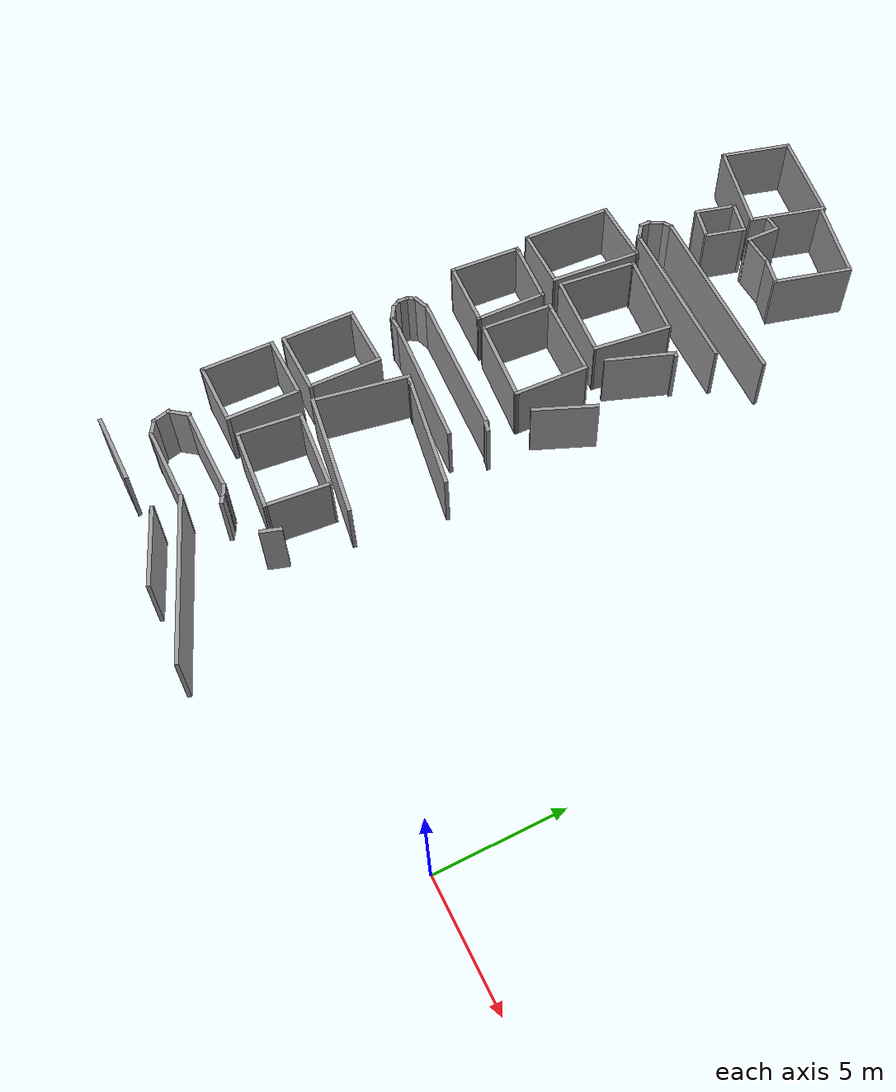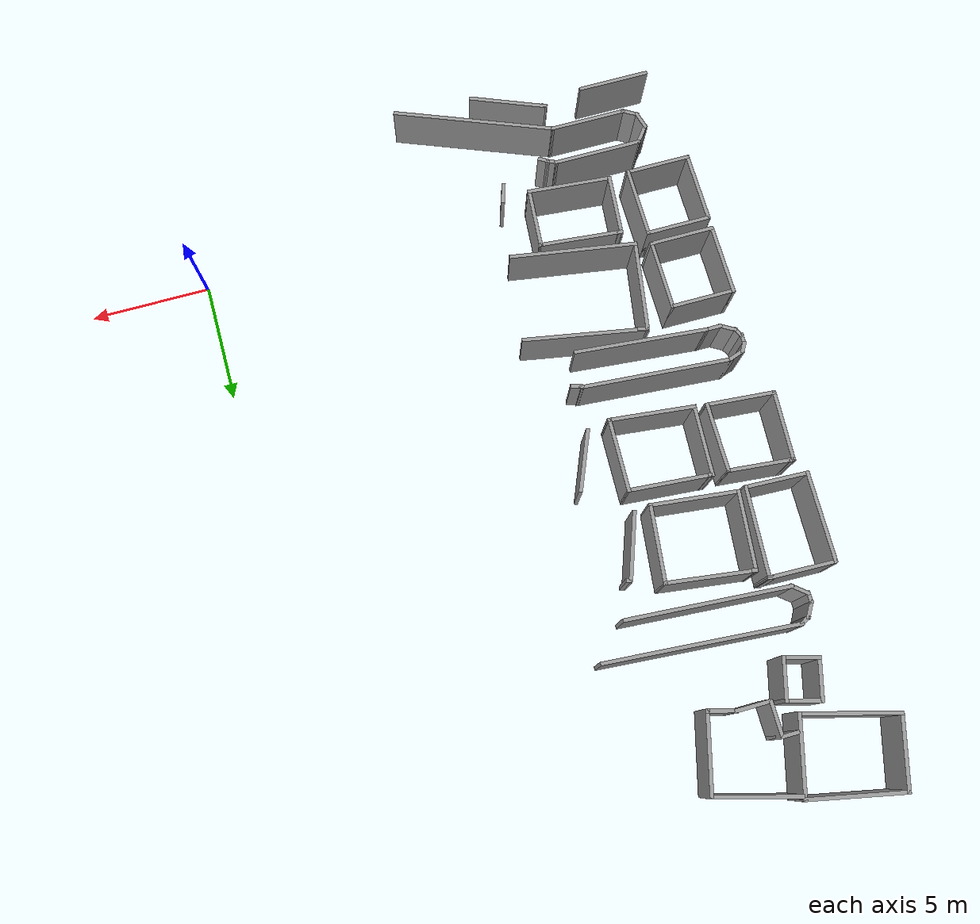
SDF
<sdf version="1.6">
 <model name="palazzo">
  <pose>-1.20783 -1.18535 0 0 -0 0</pose>
  <link name="Wall_1000">
   <collision name="Wall_1000_Collision">
    <geometry><box><size>5.30339 0.15 2.5</size></box></geometry>
    <pose>0 0 1.25 0 -0 0</pose>
   </collision>
   <visual name="Wall_1000_Visual">
    <pose>0 0 1.25 0 -0 0</pose>
    <geometry><box><size>5.30339 0.15 2.5</size></box></geometry>
    <material>
     <script><uri>file://media/materials/scripts/gazebo.material</uri><name>Gazebo/Grey</name></script>
     <ambient>1 1 1 1</ambient>
    </material>
    <meta><layer>0</layer></meta>
   </visual>
   <pose>-13.9241 4.48746 0 0 -0 2.98879</pose>
  </link>
  <link name="Wall_1002">
   <collision name="Wall_1002_Collision">
    <geometry><box><size>5.19311 0.15 2.5</size></box></geometry>
    <pose>0 0 1.25 0 -0 0</pose>
   </collision>
   <visual name="Wall_1002_Visual">
    <pose>0 0 1.25 0 -0 0</pose>
    <geometry><box><size>5.19311 0.15 2.5</size></box></geometry>
    <material>
     <script><uri>file://media/materials/scripts/gazebo.material</uri><name>Gazebo/Grey</name></script>
     <ambient>1 1 1 1</ambient>
    </material>
    <meta><layer>0</layer></meta>
   </visual>
   <pose>-13.3698 8.12706 0 0 -0 2.9686</pose>
  </link>
  <link name="Wall_1006">
   <collision name="Wall_1006_Collision">
    <geometry><box><size>0.25 0.15 2.5</size></box></geometry>
    <pose>0 0 1.25 0 -0 0</pose>
   </collision>
   <visual name="Wall_1006_Visual">
    <pose>0 0 1.25 0 -0 0</pose>
    <geometry><box><size>0.25 0.15 2.5</size></box></geometry>
    <material>
     <script><uri>file://media/materials/scripts/gazebo.material</uri><name>Gazebo/Grey</name></script>
     <ambient>1 1 1 1</ambient>
    </material>
    <meta><layer>0</layer></meta>
   </visual>
   <pose>-14.5991 -2.15833 0 0 -0 -0.523599</pose>
  </link>
  <link name="Wall_1008">
   <collision name="Wall_1008_Collision">
    <geometry><box><size>3.32198 0.15 2.5</size></box></geometry>
    <pose>0 0 1.25 0 -0 0</pose>
   </collision>
   <visual name="Wall_1008_Visual">
    <pose>0 0 1.25 0 -0 0</pose>
    <geometry><box><size>3.32198 0.15 2.5</size></box></geometry>
    <material>
     <script><uri>file://media/materials/scripts/gazebo.material</uri><name>Gazebo/Grey</name></script>
     <ambient>1 1 1 1</ambient>
    </material>
    <meta><layer>0</layer></meta>
   </visual>
   <pose>-13.1698 -2.72224 0 0 -0 2.76116</pose>
  </link>
  <link name="Wall_1034">
   <collision name="Wall_1034_Collision">
    <geometry><box><size>3 0.15 2.5</size></box></geometry>
    <pose>0 0 1.25 0 -0 0</pose>
   </collision>
   <visual name="Wall_1034_Visual">
    <pose>0 0 1.25 0 -0 0</pose>
    <geometry><box><size>3 0.15 2.5</size></box></geometry>
    <material>
     <script><uri>file://media/materials/scripts/gazebo.material</uri><name>Gazebo/Grey</name></script>
     <ambient>1 1 1 1</ambient>
    </material>
    <meta><layer>0</layer></meta>
   </visual>
   <pose>-17.7777 -2.51436 0 0 -0 0</pose>
  </link>
  <link name="Wall_259">
   <collision name="Wall_259_Collision">
    <geometry><box><size>0.5 0.15 2.5</size></box></geometry>
    <pose>0 0 1.25 0 -0 0</pose>
   </collision>
   <visual name="Wall_259_Visual">
    <pose>0 0 1.25 0 -0 0</pose>
    <geometry><box><size>0.5 0.15 2.5</size></box></geometry>
    <material>
     <script><uri>file://media/materials/scripts/gazebo.material</uri><name>Gazebo/Grey</name></script>
     <ambient>1 1 1 1</ambient>
    </material>
    <meta><layer>0</layer></meta>
   </visual>
   <pose>-13.8826 0.258272 0 0 -0 -0.523599</pose>
  </link>
  <link name="Wall_264">
   <collision name="Wall_264_Collision">
    <geometry><box><size>0.934212 0.15 2.5</size></box></geometry>
    <pose>0 0 1.25 0 -0 0</pose>
   </collision>
   <visual name="Wall_264_Visual">
    <pose>0 0 1.25 0 -0 0</pose>
    <geometry><box><size>0.934212 0.15 2.5</size></box></geometry>
    <material>
     <script><uri>file://media/materials/scripts/gazebo.material</uri><name>Gazebo/Grey</name></script>
     <ambient>1 1 1 1</ambient>
    </material>
    <meta><layer>0</layer></meta>
   </visual>
   <pose>-18.2057 0.190465 0 0 -0 -2.23075</pose>
  </link>
  <link name="Wall_265">
   <collision name="Wall_265_Collision">
    <geometry><box><size>0.808408 0.15 2.5</size></box></geometry>
    <pose>0 0 1.25 0 -0 0</pose>
   </collision>
   <visual name="Wall_265_Visual">
    <pose>0 0 1.25 0 -0 0</pose>
    <geometry><box><size>0.808408 0.15 2.5</size></box></geometry>
    <material>
     <script><uri>file://media/materials/scripts/gazebo.material</uri><name>Gazebo/Grey</name></script>
     <ambient>1 1 1 1</ambient>
    </material>
    <meta><layer>0</layer></meta>
   </visual>
   <pose>-18.3592 -0.427584 0 0 -0 -1.30367</pose>
  </link>
  <link name="Wall_266">
   <collision name="Wall_266_Collision">
    <geometry><box><size>0.75 0.15 2.5</size></box></geometry>
    <pose>0 0 1.25 0 -0 0</pose>
   </collision>
   <visual name="Wall_266_Visual">
    <pose>0 0 1.25 0 -0 0</pose>
    <geometry><box><size>0.75 0.15 2.5</size></box></geometry>
    <material>
     <script><uri>file://media/materials/scripts/gazebo.material</uri><name>Gazebo/Grey</name></script>
     <ambient>1 1 1 1</ambient>
    </material>
    <meta><layer>0</layer></meta>
   </visual>
   <pose>-18.0125 -0.895113 0 0 -0 -0.523599</pose>
  </link>
  <link name="Wall_267">
   <collision name="Wall_267_Collision">
    <geometry><box><size>3.25 0.15 2.5</size></box></geometry>
    <pose>0 0 1.25 0 -0 0</pose>
   </collision>
   <visual name="Wall_267_Visual">
    <pose>0 0 1.25 0 -0 0</pose>
    <geometry><box><size>3.25 0.15 2.5</size></box></geometry>
    <material>
     <script><uri>file://media/materials/scripts/gazebo.material</uri><name>Gazebo/Grey</name></script>
     <ambient>1 1 1 1</ambient>
    </material>
    <meta><layer>0</layer></meta>
   </visual>
   <pose>-16.2027 -1.04511 0 0 -0 0</pose>
  </link>
  <link name="Wall_271">
   <collision name="Wall_271_Collision">
    <geometry><box><size>6.85564 0.15 2.5</size></box></geometry>
    <pose>0 0 1.25 0 -0 0</pose>
   </collision>
   <visual name="Wall_271_Visual">
    <pose>0 0 1.25 0 -0 0</pose>
    <geometry><box><size>6.85564 0.15 2.5</size></box></geometry>
    <material>
     <script><uri>file://media/materials/scripts/gazebo.material</uri><name>Gazebo/Grey</name></script>
     <ambient>1 1 1 1</ambient>
    </material>
    <meta><layer>0</layer></meta>
   </visual>
   <pose>-11.5316 -2.26989 0 0 -0 -0.373952</pose>
  </link>
  <link name="Wall_45">
   <collision name="Wall_45_Collision">
    <geometry><box><size>3 0.15 2.5</size></box></geometry>
    <pose>0 0 1.25 0 -0 0</pose>
   </collision>
   <visual name="Wall_45_Visual">
    <pose>0 0 1.25 0 -0 0</pose>
    <geometry><box><size>3 0.15 2.5</size></box></geometry>
    <material>
     <script><uri>file://media/materials/scripts/gazebo.material</uri><name>Gazebo/Grey</name></script>
     <ambient>1 1 1 1</ambient>
    </material>
    <meta><layer>0</layer></meta>
   </visual>
   <pose>-20.1582 26.9712 0 0 -0 -1.8326</pose>
  </link>
  <link name="Wall_46">
   <collision name="Wall_46_Collision">
    <geometry><box><size>4 0.15 2.5</size></box></geometry>
    <pose>0 0 1.25 0 -0 0</pose>
   </collision>
   <visual name="Wall_46_Visual">
    <pose>0 0 1.25 0 -0 0</pose>
    <geometry><box><size>4 0.15 2.5</size></box></geometry>
    <material>
     <script><uri>file://media/materials/scripts/gazebo.material</uri><name>Gazebo/Grey</name></script>
     <ambient>1 1 1 1</ambient>
    </material>
    <meta><layer>0</layer></meta>
   </visual>
   <pose>-18.6676 25.0965 0 0 -0 -0.261799</pose>
  </link>
  <link name="Wall_47">
   <collision name="Wall_47_Collision">
    <geometry><box><size>3.25 0.15 2.5</size></box></geometry>
    <pose>0 0 1.25 0 -0 0</pose>
   </collision>
   <visual name="Wall_47_Visual">
    <pose>0 0 1.25 0 -0 0</pose>
    <geometry><box><size>3.25 0.15 2.5</size></box></geometry>
    <material>
     <script><uri>file://media/materials/scripts/gazebo.material</uri><name>Gazebo/Grey</name></script>
     <ambient>1 1 1 1</ambient>
    </material>
    <meta><layer>0</layer></meta>
   </visual>
   <pose>-16.407 26.0954 0 0 -0 1.309</pose>
  </link>
  <link name="Wall_48">
   <collision name="Wall_48_Collision">
    <geometry><box><size>4.00811 0.15 2.5</size></box></geometry>
    <pose>0 0 1.25 0 -0 0</pose>
   </collision>
   <visual name="Wall_48_Visual">
    <pose>0 0 1.25 0 -0 0</pose>
    <geometry><box><size>4.00811 0.15 2.5</size></box></geometry>
    <material>
     <script><uri>file://media/materials/scripts/gazebo.material</uri><name>Gazebo/Grey</name></script>
     <ambient>1 1 1 1</ambient>
    </material>
    <meta><layer>0</layer></meta>
   </visual>
   <pose>-17.8976 27.9701 0 0 -0 2.94464</pose>
  </link>
  <link name="Wall_50">
   <collision name="Wall_50_Collision">
    <geometry><box><size>0.75 0.15 2.5</size></box></geometry>
    <pose>0 0 1.25 0 -0 0</pose>
   </collision>
   <visual name="Wall_50_Visual">
    <pose>0 0 1.25 0 -0 0</pose>
    <geometry><box><size>0.75 0.15 2.5</size></box></geometry>
    <material>
     <script><uri>file://media/materials/scripts/gazebo.material</uri><name>Gazebo/Grey</name></script>
     <ambient>1 1 1 1</ambient>
    </material>
    <meta><layer>0</layer></meta>
   </visual>
   <pose>-16.2207 25.2315 0 0 -0 0</pose>
  </link>
  <link name="Wall_51">
   <collision name="Wall_51_Collision">
    <geometry><box><size>1.5 0.15 2.5</size></box></geometry>
    <pose>0 0 1.25 0 -0 0</pose>
   </collision>
   <visual name="Wall_51_Visual">
    <pose>0 0 1.25 0 -0 0</pose>
    <geometry><box><size>1.5 0.15 2.5</size></box></geometry>
    <material>
     <script><uri>file://media/materials/scripts/gazebo.material</uri><name>Gazebo/Grey</name></script>
     <ambient>1 1 1 1</ambient>
    </material>
    <meta><layer>0</layer></meta>
   </visual>
   <pose>-15.9207 24.5565 0 0 -0 -1.5708</pose>
  </link>
  <link name="Wall_52">
   <collision name="Wall_52_Collision">
    <geometry><box><size>1.5 0.15 2.5</size></box></geometry>
    <pose>0 0 1.25 0 -0 0</pose>
   </collision>
   <visual name="Wall_52_Visual">
    <pose>0 0 1.25 0 -0 0</pose>
    <geometry><box><size>1.5 0.15 2.5</size></box></geometry>
    <material>
     <script><uri>file://media/materials/scripts/gazebo.material</uri><name>Gazebo/Grey</name></script>
     <ambient>1 1 1 1</ambient>
    </material>
    <meta><layer>0</layer></meta>
   </visual>
   <pose>-15.2457 23.8815 0 0 -0 0</pose>
  </link>
  <link name="Wall_53">
   <collision name="Wall_53_Collision">
    <geometry><box><size>1.25 0.15 2.5</size></box></geometry>
    <pose>0 0 1.25 0 -0 0</pose>
   </collision>
   <visual name="Wall_53_Visual">
    <pose>0 0 1.25 0 -0 0</pose>
    <geometry><box><size>1.25 0.15 2.5</size></box></geometry>
    <material>
     <script><uri>file://media/materials/scripts/gazebo.material</uri><name>Gazebo/Grey</name></script>
     <ambient>1 1 1 1</ambient>
    </material>
    <meta><layer>0</layer></meta>
   </visual>
   <pose>-14.0395 23.7392 0 0 -0 -0.261799</pose>
  </link>
  <link name="Wall_54">
   <collision name="Wall_54_Collision">
    <geometry><box><size>3.25 0.15 2.5</size></box></geometry>
    <pose>0 0 1.25 0 -0 0</pose>
   </collision>
   <visual name="Wall_54_Visual">
    <pose>0 0 1.25 0 -0 0</pose>
    <geometry><box><size>3.25 0.15 2.5</size></box></geometry>
    <material>
     <script><uri>file://media/materials/scripts/gazebo.material</uri><name>Gazebo/Grey</name></script>
     <ambient>1 1 1 1</ambient>
    </material>
    <meta><layer>0</layer></meta>
   </visual>
   <pose>-13.107 25.094 0 0 -0 1.309</pose>
  </link>
  <link name="Wall_55">
   <collision name="Wall_55_Collision">
    <geometry><box><size>3.5 0.15 2.5</size></box></geometry>
    <pose>0 0 1.25 0 -0 0</pose>
   </collision>
   <visual name="Wall_55_Visual">
    <pose>0 0 1.25 0 -0 0</pose>
    <geometry><box><size>3.5 0.15 2.5</size></box></geometry>
    <material>
     <script><uri>file://media/materials/scripts/gazebo.material</uri><name>Gazebo/Grey</name></script>
     <ambient>1 1 1 1</ambient>
    </material>
    <meta><layer>0</layer></meta>
   </visual>
   <pose>-14.3238 27.0247 0 0 -0 2.87979</pose>
  </link>
  <link name="Wall_57">
   <collision name="Wall_57_Collision">
    <geometry><box><size>1.75 0.15 2.5</size></box></geometry>
    <pose>0 0 1.25 0 -0 0</pose>
   </collision>
   <visual name="Wall_57_Visual">
    <pose>0 0 1.25 0 -0 0</pose>
    <geometry><box><size>1.75 0.15 2.5</size></box></geometry>
    <material>
     <script><uri>file://media/materials/scripts/gazebo.material</uri><name>Gazebo/Grey</name></script>
     <ambient>1 1 1 1</ambient>
    </material>
    <meta><layer>0</layer></meta>
   </visual>
   <pose>-18.0045 23.6018 0 0 -0 -1.8326</pose>
  </link>
  <link name="Wall_58">
   <collision name="Wall_58_Collision">
    <geometry><box><size>1.5 0.15 2.5</size></box></geometry>
    <pose>0 0 1.25 0 -0 0</pose>
   </collision>
   <visual name="Wall_58_Visual">
    <pose>0 0 1.25 0 -0 0</pose>
    <geometry><box><size>1.5 0.15 2.5</size></box></geometry>
    <material>
     <script><uri>file://media/materials/scripts/gazebo.material</uri><name>Gazebo/Grey</name></script>
     <ambient>1 1 1 1</ambient>
    </material>
    <meta><layer>0</layer></meta>
   </visual>
   <pose>-17.5596 22.6544 0 0 -0 -0.261799</pose>
  </link>
  <link name="Wall_59">
   <collision name="Wall_59_Collision">
    <geometry><box><size>1.75 0.15 2.5</size></box></geometry>
    <pose>0 0 1.25 0 -0 0</pose>
   </collision>
   <visual name="Wall_59_Visual">
    <pose>0 0 1.25 0 -0 0</pose>
    <geometry><box><size>1.75 0.15 2.5</size></box></geometry>
    <material>
     <script><uri>file://media/materials/scripts/gazebo.material</uri><name>Gazebo/Grey</name></script>
     <ambient>1 1 1 1</ambient>
    </material>
    <meta><layer>0</layer></meta>
   </visual>
   <pose>-16.7005 23.2524 0 0 -0 1.309</pose>
  </link>
  <link name="Wall_60">
   <collision name="Wall_60_Collision">
    <geometry><box><size>1.5 0.15 2.5</size></box></geometry>
    <pose>0 0 1.25 0 -0 0</pose>
   </collision>
   <visual name="Wall_60_Visual">
    <pose>0 0 1.25 0 -0 0</pose>
    <geometry><box><size>1.5 0.15 2.5</size></box></geometry>
    <material>
     <script><uri>file://media/materials/scripts/gazebo.material</uri><name>Gazebo/Grey</name></script>
     <ambient>1 1 1 1</ambient>
    </material>
    <meta><layer>0</layer></meta>
   </visual>
   <pose>-17.1454 24.1999 0 0 -0 2.87979</pose>
  </link>
  <link name="Wall_678">
   <collision name="Wall_678_Collision">
    <geometry><box><size>6.73429 0.15 2.5</size></box></geometry>
    <pose>0 0 1.25 0 -0 0</pose>
   </collision>
   <visual name="Wall_678_Visual">
    <pose>0 0 1.25 0 -0 0</pose>
    <geometry><box><size>6.73429 0.15 2.5</size></box></geometry>
    <material>
     <script><uri>file://media/materials/scripts/gazebo.material</uri><name>Gazebo/Grey</name></script>
     <ambient>1 1 1 1</ambient>
    </material>
    <meta><layer>0</layer></meta>
   </visual>
   <pose>-14.805 19.7689 0 0 -0 -0.066766</pose>
  </link>
  <link name="Wall_684">
   <collision name="Wall_684_Collision">
    <geometry><box><size>7.95493 0.15 2.5</size></box></geometry>
    <pose>0 0 1.25 0 -0 0</pose>
   </collision>
   <visual name="Wall_684_Visual">
    <pose>0 0 1.25 0 -0 0</pose>
    <geometry><box><size>7.95493 0.15 2.5</size></box></geometry>
    <material>
     <script><uri>file://media/materials/scripts/gazebo.material</uri><name>Gazebo/Grey</name></script>
     <ambient>1 1 1 1</ambient>
    </material>
    <meta><layer>0</layer></meta>
   </visual>
   <pose>-14.1139 21.1706 0 0 -0 -0.073106</pose>
  </link>
  <link name="Wall_686">
   <collision name="Wall_686_Collision">
    <geometry><box><size>0.5 0.15 2.5</size></box></geometry>
    <pose>0 0 1.25 0 -0 0</pose>
   </collision>
   <visual name="Wall_686_Visual">
    <pose>0 0 1.25 0 -0 0</pose>
    <geometry><box><size>0.5 0.15 2.5</size></box></geometry>
    <material>
     <script><uri>file://media/materials/scripts/gazebo.material</uri><name>Gazebo/Grey</name></script>
     <ambient>1 1 1 1</ambient>
    </material>
    <meta><layer>0</layer></meta>
   </visual>
   <pose>-18.1575 21.3682 0 0 -0 -2.61799</pose>
  </link>
  <link name="Wall_687">
   <collision name="Wall_687_Collision">
    <geometry><box><size>0.75 0.15 2.5</size></box></geometry>
    <pose>0 0 1.25 0 -0 0</pose>
   </collision>
   <visual name="Wall_687_Visual">
    <pose>0 0 1.25 0 -0 0</pose>
    <geometry><box><size>0.75 0.15 2.5</size></box></geometry>
    <material>
     <script><uri>file://media/materials/scripts/gazebo.material</uri><name>Gazebo/Grey</name></script>
     <ambient>1 1 1 1</ambient>
    </material>
    <meta><layer>0</layer></meta>
   </visual>
   <pose>-18.459 21.0208 0 0 -0 -2.0944</pose>
  </link>
  <link name="Wall_688">
   <collision name="Wall_688_Collision">
    <geometry><box><size>0.5 0.15 2.5</size></box></geometry>
    <pose>0 0 1.25 0 -0 0</pose>
   </collision>
   <visual name="Wall_688_Visual">
    <pose>0 0 1.25 0 -0 0</pose>
    <geometry><box><size>0.5 0.15 2.5</size></box></geometry>
    <material>
     <script><uri>file://media/materials/scripts/gazebo.material</uri><name>Gazebo/Grey</name></script>
     <ambient>1 1 1 1</ambient>
    </material>
    <meta><layer>0</layer></meta>
   </visual>
   <pose>-18.609 20.586 0 0 -0 -1.5708</pose>
  </link>
  <link name="Wall_689">
   <collision name="Wall_689_Collision">
    <geometry><box><size>0.819395 0.15 2.5</size></box></geometry>
    <pose>0 0 1.25 0 -0 0</pose>
   </collision>
   <visual name="Wall_689_Visual">
    <pose>0 0 1.25 0 -0 0</pose>
    <geometry><box><size>0.819395 0.15 2.5</size></box></geometry>
    <material>
     <script><uri>file://media/materials/scripts/gazebo.material</uri><name>Gazebo/Grey</name></script>
     <ambient>1 1 1 1</ambient>
    </material>
    <meta><layer>0</layer></meta>
   </visual>
   <pose>-18.3494 20.1998 0 0 -0 -0.683078</pose>
  </link>
  <link name="Wall_704">
   <collision name="Wall_704_Collision">
    <geometry><box><size>3.75 0.15 2.5</size></box></geometry>
    <pose>0 0 1.25 0 -0 0</pose>
   </collision>
   <visual name="Wall_704_Visual">
    <pose>0 0 1.25 0 -0 0</pose>
    <geometry><box><size>3.75 0.15 2.5</size></box></geometry>
    <material>
     <script><uri>file://media/materials/scripts/gazebo.material</uri><name>Gazebo/Grey</name></script>
     <ambient>1 1 1 1</ambient>
    </material>
    <meta><layer>0</layer></meta>
   </visual>
   <pose>-16.1653 0.500236 0 0 -0 0</pose>
  </link>
  <link name="Wall_705">
   <collision name="Wall_705_Collision">
    <geometry><box><size>0.515386 0.15 2.5</size></box></geometry>
    <pose>0 0 1.25 0 -0 0</pose>
   </collision>
   <visual name="Wall_705_Visual">
    <pose>0 0 1.25 0 -0 0</pose>
    <geometry><box><size>0.515386 0.15 2.5</size></box></geometry>
    <material>
     <script><uri>file://media/materials/scripts/gazebo.material</uri><name>Gazebo/Grey</name></script>
     <ambient>1 1 1 1</ambient>
    </material>
    <meta><layer>0</layer></meta>
   </visual>
   <pose>-14.1998 0.423004 0 0 -0 -0.436469</pose>
  </link>
  <link name="Wall_734">
   <collision name="Wall_734_Collision">
    <geometry><box><size>0.5 0.15 2.5</size></box></geometry>
    <pose>0 0 1.25 0 -0 0</pose>
   </collision>
   <visual name="Wall_734_Visual">
    <pose>0 0 1.25 0 -0 0</pose>
    <geometry><box><size>0.5 0.15 2.5</size></box></geometry>
    <material>
     <script><uri>file://media/materials/scripts/gazebo.material</uri><name>Gazebo/Grey</name></script>
     <ambient>1 1 1 1</ambient>
    </material>
    <meta><layer>0</layer></meta>
   </visual>
   <pose>-12.3931 10.131 0 0 -0 2.87979</pose>
  </link>
  <link name="Wall_735">
   <collision name="Wall_735_Collision">
    <geometry><box><size>0.198305 0.15 2.5</size></box></geometry>
    <pose>0 0 1.25 0 -0 0</pose>
   </collision>
   <visual name="Wall_735_Visual">
    <pose>0 0 1.25 0 -0 0</pose>
    <geometry><box><size>0.198305 0.15 2.5</size></box></geometry>
    <material>
     <script><uri>file://media/materials/scripts/gazebo.material</uri><name>Gazebo/Grey</name></script>
     <ambient>1 1 1 1</ambient>
    </material>
    <meta><layer>0</layer></meta>
   </visual>
   <pose>-12.5822 10.1897 0 0 -0 2.55446</pose>
  </link>
  <link name="Wall_737">
   <collision name="Wall_737_Collision">
    <geometry><box><size>6.27736 0.15 2.5</size></box></geometry>
    <pose>0 0 1.25 0 -0 0</pose>
   </collision>
   <visual name="Wall_737_Visual">
    <pose>0 0 1.25 0 -0 0</pose>
    <geometry><box><size>6.27736 0.15 2.5</size></box></geometry>
    <material>
     <script><uri>file://media/materials/scripts/gazebo.material</uri><name>Gazebo/Grey</name></script>
     <ambient>1 1 1 1</ambient>
    </material>
    <meta><layer>0</layer></meta>
   </visual>
   <pose>-15.6575 10.4518 0 0 -0 -0.0743</pose>
  </link>
  <link name="Wall_739">
   <collision name="Wall_739_Collision">
    <geometry><box><size>0.725442 0.15 2.5</size></box></geometry>
    <pose>0 0 1.25 0 -0 0</pose>
   </collision>
   <visual name="Wall_739_Visual">
    <pose>0 0 1.25 0 -0 0</pose>
    <geometry><box><size>0.725442 0.15 2.5</size></box></geometry>
    <material>
     <script><uri>file://media/materials/scripts/gazebo.material</uri><name>Gazebo/Grey</name></script>
     <ambient>1 1 1 1</ambient>
    </material>
    <meta><layer>0</layer></meta>
   </visual>
   <pose>-18.9854 10.5661 0 0 -0 -2.81675</pose>
  </link>
  <link name="Wall_740">
   <collision name="Wall_740_Collision">
    <geometry><box><size>0.5 0.15 2.5</size></box></geometry>
    <pose>0 0 1.25 0 -0 0</pose>
   </collision>
   <visual name="Wall_740_Visual">
    <pose>0 0 1.25 0 -0 0</pose>
    <geometry><box><size>0.5 0.15 2.5</size></box></geometry>
    <material>
     <script><uri>file://media/materials/scripts/gazebo.material</uri><name>Gazebo/Grey</name></script>
     <ambient>1 1 1 1</ambient>
    </material>
    <meta><layer>0</layer></meta>
   </visual>
   <pose>-19.3456 10.3227 0 0 -0 -2.0944</pose>
  </link>
  <link name="Wall_741">
   <collision name="Wall_741_Collision">
    <geometry><box><size>0.5 0.15 2.5</size></box></geometry>
    <pose>0 0 1.25 0 -0 0</pose>
   </collision>
   <visual name="Wall_741_Visual">
    <pose>0 0 1.25 0 -0 0</pose>
    <geometry><box><size>0.5 0.15 2.5</size></box></geometry>
    <material>
     <script><uri>file://media/materials/scripts/gazebo.material</uri><name>Gazebo/Grey</name></script>
     <ambient>1 1 1 1</ambient>
    </material>
    <meta><layer>0</layer></meta>
   </visual>
   <pose>-19.4331 9.99617 0 0 -0 -1.5708</pose>
  </link>
  <link name="Wall_742">
   <collision name="Wall_742_Collision">
    <geometry><box><size>0.5 0.15 2.5</size></box></geometry>
    <pose>0 0 1.25 0 -0 0</pose>
   </collision>
   <visual name="Wall_742_Visual">
    <pose>0 0 1.25 0 -0 0</pose>
    <geometry><box><size>0.5 0.15 2.5</size></box></geometry>
    <material>
     <script><uri>file://media/materials/scripts/gazebo.material</uri><name>Gazebo/Grey</name></script>
     <ambient>1 1 1 1</ambient>
    </material>
    <meta><layer>0</layer></meta>
   </visual>
   <pose>-19.3456 9.66962 0 0 -0 -1.0472</pose>
  </link>
  <link name="Wall_743">
   <collision name="Wall_743_Collision">
    <geometry><box><size>0.75 0.15 2.5</size></box></geometry>
    <pose>0 0 1.25 0 -0 0</pose>
   </collision>
   <visual name="Wall_743_Visual">
    <pose>0 0 1.25 0 -0 0</pose>
    <geometry><box><size>0.75 0.15 2.5</size></box></geometry>
    <material>
     <script><uri>file://media/materials/scripts/gazebo.material</uri><name>Gazebo/Grey</name></script>
     <ambient>1 1 1 1</ambient>
    </material>
    <meta><layer>0</layer></meta>
   </visual>
   <pose>-18.9983 9.36806 0 0 -0 -0.523599</pose>
  </link>
  <link name="Wall_744">
   <collision name="Wall_744_Collision">
    <geometry><box><size>0.75 0.15 2.5</size></box></geometry>
    <pose>0 0 1.25 0 -0 0</pose>
   </collision>
   <visual name="Wall_744_Visual">
    <pose>0 0 1.25 0 -0 0</pose>
    <geometry><box><size>0.75 0.15 2.5</size></box></geometry>
    <material>
     <script><uri>file://media/materials/scripts/gazebo.material</uri><name>Gazebo/Grey</name></script>
     <ambient>1 1 1 1</ambient>
    </material>
    <meta><layer>0</layer></meta>
   </visual>
   <pose>-18.4385 9.21806 0 0 -0 0</pose>
  </link>
  <link name="Wall_746">
   <collision name="Wall_746_Collision">
    <geometry><box><size>5.53262 0.15 2.5</size></box></geometry>
    <pose>0 0 1.25 0 -0 0</pose>
   </collision>
   <visual name="Wall_746_Visual">
    <pose>0 0 1.25 0 -0 0</pose>
    <geometry><box><size>5.53262 0.15 2.5</size></box></geometry>
    <material>
     <script><uri>file://media/materials/scripts/gazebo.material</uri><name>Gazebo/Grey</name></script>
     <ambient>1 1 1 1</ambient>
    </material>
    <meta><layer>0</layer></meta>
   </visual>
   <pose>-15.4577 8.9806 0 0 -0 3.05324</pose>
  </link>
  <link name="Wall_804">
   <collision name="Wall_804_Collision">
    <geometry><box><size>2.59075 0.15 2.5</size></box></geometry>
    <pose>0 0 1.25 0 -0 0</pose>
   </collision>
   <visual name="Wall_804_Visual">
    <pose>0 0 1.25 0 -0 0</pose>
    <geometry><box><size>2.59075 0.15 2.5</size></box></geometry>
    <material>
     <script><uri>file://media/materials/scripts/gazebo.material</uri><name>Gazebo/Grey</name></script>
     <ambient>1 1 1 1</ambient>
    </material>
    <meta><layer>0</layer></meta>
   </visual>
   <pose>-11.8213 13.1198 0 0 -0 1.17021</pose>
  </link>
  <link name="Wall_821">
   <collision name="Wall_821_Collision">
    <geometry><box><size>0.25 0.15 2.5</size></box></geometry>
    <pose>0 0 1.25 0 -0 0</pose>
   </collision>
   <visual name="Wall_821_Visual">
    <pose>0 0 1.25 0 -0 0</pose>
    <geometry><box><size>0.25 0.15 2.5</size></box></geometry>
    <material>
     <script><uri>file://media/materials/scripts/gazebo.material</uri><name>Gazebo/Grey</name></script>
     <ambient>1 1 1 1</ambient>
    </material>
    <meta><layer>0</layer></meta>
   </visual>
   <pose>-12.1432 18.1263 0 0 -0 -0.261799</pose>
  </link>
  <link name="Wall_825">
   <collision name="Wall_825_Collision">
    <geometry><box><size>2.8246 0.15 2.5</size></box></geometry>
    <pose>0 0 1.25 0 -0 0</pose>
   </collision>
   <visual name="Wall_825_Visual">
    <pose>0 0 1.25 0 -0 0</pose>
    <geometry><box><size>2.8246 0.15 2.5</size></box></geometry>
    <material>
     <script><uri>file://media/materials/scripts/gazebo.material</uri><name>Gazebo/Grey</name></script>
     <ambient>1 1 1 1</ambient>
    </material>
    <meta><layer>0</layer></meta>
   </visual>
   <pose>-12.6514 16.8835 0 0 -0 1.21973</pose>
  </link>
  <link name="Wall_831">
   <collision name="Wall_831_Collision">
    <geometry><box><size>0.25 0.15 2.5</size></box></geometry>
    <pose>0 0 1.25 0 -0 0</pose>
   </collision>
   <visual name="Wall_831_Visual">
    <pose>0 0 1.25 0 -0 0</pose>
    <geometry><box><size>0.25 0.15 2.5</size></box></geometry>
    <material>
     <script><uri>file://media/materials/scripts/gazebo.material</uri><name>Gazebo/Grey</name></script>
     <ambient>1 1 1 1</ambient>
    </material>
    <meta><layer>0</layer></meta>
   </visual>
   <pose>-16.9127 19.0406 0 0 -0 -0.261799</pose>
  </link>
  <link name="Wall_833">
   <collision name="Wall_833_Collision">
    <geometry><box><size>3.70627 0.15 2.5</size></box></geometry>
    <pose>0 0 1.25 0 -0 0</pose>
   </collision>
   <visual name="Wall_833_Visual">
    <pose>0 0 1.25 0 -0 0</pose>
    <geometry><box><size>3.70627 0.15 2.5</size></box></geometry>
    <material>
     <script><uri>file://media/materials/scripts/gazebo.material</uri><name>Gazebo/Grey</name></script>
     <ambient>1 1 1 1</ambient>
    </material>
    <meta><layer>0</layer></meta>
   </visual>
   <pose>-15.1972 18.8285 0 0 -0 3.01469</pose>
  </link>
  <link name="Wall_835">
   <collision name="Wall_835_Collision">
    <geometry><box><size>3.30555 0.15 2.5</size></box></geometry>
    <pose>0 0 1.25 0 -0 0</pose>
   </collision>
   <visual name="Wall_835_Visual">
    <pose>0 0 1.25 0 -0 0</pose>
    <geometry><box><size>3.30555 0.15 2.5</size></box></geometry>
    <material>
     <script><uri>file://media/materials/scripts/gazebo.material</uri><name>Gazebo/Grey</name></script>
     <ambient>1 1 1 1</ambient>
    </material>
    <meta><layer>0</layer></meta>
   </visual>
   <pose>-17.1252 17.4843 0 0 -0 1.46653</pose>
  </link>
  <link name="Wall_837">
   <collision name="Wall_837_Collision">
    <geometry><box><size>3.23707 0.15 2.5</size></box></geometry>
    <pose>0 0 1.25 0 -0 0</pose>
   </collision>
   <visual name="Wall_837_Visual">
    <pose>0 0 1.25 0 -0 0</pose>
    <geometry><box><size>3.23707 0.15 2.5</size></box></geometry>
    <material>
     <script><uri>file://media/materials/scripts/gazebo.material</uri><name>Gazebo/Grey</name></script>
     <ambient>1 1 1 1</ambient>
    </material>
    <meta><layer>0</layer></meta>
   </visual>
   <pose>-13.6158 17.0707 0 0 -0 1.45231</pose>
  </link>
  <link name="Wall_839">
   <collision name="Wall_839_Collision">
    <geometry><box><size>3.66149 0.15 2.5</size></box></geometry>
    <pose>0 0 1.25 0 -0 0</pose>
   </collision>
   <visual name="Wall_839_Visual">
    <pose>0 0 1.25 0 -0 0</pose>
    <geometry><box><size>3.66149 0.15 2.5</size></box></geometry>
    <material>
     <script><uri>file://media/materials/scripts/gazebo.material</uri><name>Gazebo/Grey</name></script>
     <ambient>1 1 1 1</ambient>
    </material>
    <meta><layer>0</layer></meta>
   </visual>
   <pose>-15.5439 15.7265 0 0 -0 -0.107597</pose>
  </link>
  <link name="Wall_841">
   <collision name="Wall_841_Collision">
    <geometry><box><size>0.25 0.15 2.5</size></box></geometry>
    <pose>0 0 1.25 0 -0 0</pose>
   </collision>
   <visual name="Wall_841_Visual">
    <pose>0 0 1.25 0 -0 0</pose>
    <geometry><box><size>0.25 0.15 2.5</size></box></geometry>
    <material>
     <script><uri>file://media/materials/scripts/gazebo.material</uri><name>Gazebo/Grey</name></script>
     <ambient>1 1 1 1</ambient>
    </material>
    <meta><layer>0</layer></meta>
   </visual>
   <pose>-17.4108 19.4679 0 0 -0 2.87979</pose>
  </link>
  <link name="Wall_843">
   <collision name="Wall_843_Collision">
    <geometry><box><size>3.78398 0.15 2.5</size></box></geometry>
    <pose>0 0 1.25 0 -0 0</pose>
   </collision>
   <visual name="Wall_843_Visual">
    <pose>0 0 1.25 0 -0 0</pose>
    <geometry><box><size>3.78398 0.15 2.5</size></box></geometry>
    <material>
     <script><uri>file://media/materials/scripts/gazebo.material</uri><name>Gazebo/Grey</name></script>
     <ambient>1 1 1 1</ambient>
    </material>
    <meta><layer>0</layer></meta>
   </visual>
   <pose>-17.4902 17.6424 0 0 -0 1.50044</pose>
  </link>
  <link name="Wall_845">
   <collision name="Wall_845_Collision">
    <geometry><box><size>2.66991 0.15 2.5</size></box></geometry>
    <pose>0 0 1.25 0 -0 0</pose>
   </collision>
   <visual name="Wall_845_Visual">
    <pose>0 0 1.25 0 -0 0</pose>
    <geometry><box><size>2.66991 0.15 2.5</size></box></geometry>
    <material>
     <script><uri>file://media/materials/scripts/gazebo.material</uri><name>Gazebo/Grey</name></script>
     <ambient>1 1 1 1</ambient>
    </material>
    <meta><layer>0</layer></meta>
   </visual>
   <pose>-18.8769 15.8786 0 0 -0 -0.038628</pose>
  </link>
  <link name="Wall_847">
   <collision name="Wall_847_Collision">
    <geometry><box><size>2.82716 0.15 2.5</size></box></geometry>
    <pose>0 0 1.25 0 -0 0</pose>
   </collision>
   <visual name="Wall_847_Visual">
    <pose>0 0 1.25 0 -0 0</pose>
    <geometry><box><size>2.82716 0.15 2.5</size></box></geometry>
    <material>
     <script><uri>file://media/materials/scripts/gazebo.material</uri><name>Gazebo/Grey</name></script>
     <ambient>1 1 1 1</ambient>
    </material>
    <meta><layer>0</layer></meta>
   </visual>
   <pose>-18.7005 19.4914 0 0 -0 -0.027266</pose>
  </link>
  <link name="Wall_849">
   <collision name="Wall_849_Collision">
    <geometry><box><size>3.75198 0.15 2.5</size></box></geometry>
    <pose>0 0 1.25 0 -0 0</pose>
   </collision>
   <visual name="Wall_849_Visual">
    <pose>0 0 1.25 0 -0 0</pose>
    <geometry><box><size>3.75198 0.15 2.5</size></box></geometry>
    <material>
     <script><uri>file://media/materials/scripts/gazebo.material</uri><name>Gazebo/Grey</name></script>
     <ambient>1 1 1 1</ambient>
    </material>
    <meta><layer>0</layer></meta>
   </visual>
   <pose>-20.0873 17.7276 0 0 -0 1.54378</pose>
  </link>
  <link name="Wall_852">
   <collision name="Wall_852_Collision">
    <geometry><box><size>0.25 0.15 2.5</size></box></geometry>
    <pose>0 0 1.25 0 -0 0</pose>
   </collision>
   <visual name="Wall_852_Visual">
    <pose>0 0 1.25 0 -0 0</pose>
    <geometry><box><size>0.25 0.15 2.5</size></box></geometry>
    <material>
     <script><uri>file://media/materials/scripts/gazebo.material</uri><name>Gazebo/Grey</name></script>
     <ambient>1 1 1 1</ambient>
    </material>
    <meta><layer>0</layer></meta>
   </visual>
   <pose>-19.7315 15.2661 0 0 -0 0</pose>
  </link>
  <link name="Wall_854">
   <collision name="Wall_854_Collision">
    <geometry><box><size>2.77664 0.15 2.5</size></box></geometry>
    <pose>0 0 1.25 0 -0 0</pose>
   </collision>
   <visual name="Wall_854_Visual">
    <pose>0 0 1.25 0 -0 0</pose>
    <geometry><box><size>2.77664 0.15 2.5</size></box></geometry>
    <material>
     <script><uri>file://media/materials/scripts/gazebo.material</uri><name>Gazebo/Grey</name></script>
     <ambient>1 1 1 1</ambient>
    </material>
    <meta><layer>0</layer></meta>
   </visual>
   <pose>-18.4738 15.1444 0 0 -0 3.04884</pose>
  </link>
  <link name="Wall_856">
   <collision name="Wall_856_Collision">
    <geometry><box><size>2.96376 0.15 2.5</size></box></geometry>
    <pose>0 0 1.25 0 -0 0</pose>
   </collision>
   <visual name="Wall_856_Visual">
    <pose>0 0 1.25 0 -0 0</pose>
    <geometry><box><size>2.96376 0.15 2.5</size></box></geometry>
    <material>
     <script><uri>file://media/materials/scripts/gazebo.material</uri><name>Gazebo/Grey</name></script>
     <ambient>1 1 1 1</ambient>
    </material>
    <meta><layer>0</layer></meta>
   </visual>
   <pose>-19.8545 13.8611 0 0 -0 1.5189</pose>
  </link>
  <link name="Wall_858">
   <collision name="Wall_858_Collision">
    <geometry><box><size>2.93575 0.15 2.5</size></box></geometry>
    <pose>0 0 1.25 0 -0 0</pose>
   </collision>
   <visual name="Wall_858_Visual">
    <pose>0 0 1.25 0 -0 0</pose>
    <geometry><box><size>2.93575 0.15 2.5</size></box></geometry>
    <material>
     <script><uri>file://media/materials/scripts/gazebo.material</uri><name>Gazebo/Grey</name></script>
     <ambient>1 1 1 1</ambient>
    </material>
    <meta><layer>0</layer></meta>
   </visual>
   <pose>-17.1783 13.63 0 0 -0 1.56206</pose>
  </link>
  <link name="Wall_860">
   <collision name="Wall_860_Collision">
    <geometry><box><size>2.89573 0.15 2.5</size></box></geometry>
    <pose>0 0 1.25 0 -0 0</pose>
   </collision>
   <visual name="Wall_860_Visual">
    <pose>0 0 1.25 0 -0 0</pose>
    <geometry><box><size>2.89573 0.15 2.5</size></box></geometry>
    <material>
     <script><uri>file://media/materials/scripts/gazebo.material</uri><name>Gazebo/Grey</name></script>
     <ambient>1 1 1 1</ambient>
    </material>
    <meta><layer>0</layer></meta>
   </visual>
   <pose>-18.559 12.3466 0 0 -0 -0.07983</pose>
  </link>
  <link name="Wall_862">
   <collision name="Wall_862_Collision">
    <geometry><box><size>0.25 0.15 2.5</size></box></geometry>
    <pose>0 0 1.25 0 -0 0</pose>
   </collision>
   <visual name="Wall_862_Visual">
    <pose>0 0 1.25 0 -0 0</pose>
    <geometry><box><size>0.25 0.15 2.5</size></box></geometry>
    <material>
     <script><uri>file://media/materials/scripts/gazebo.material</uri><name>Gazebo/Grey</name></script>
     <ambient>1 1 1 1</ambient>
    </material>
    <meta><layer>0</layer></meta>
   </visual>
   <pose>-16.4683 15.0057 0 0 -0 0</pose>
  </link>
  <link name="Wall_864">
   <collision name="Wall_864_Collision">
    <geometry><box><size>3.52632 0.15 2.5</size></box></geometry>
    <pose>0 0 1.25 0 -0 0</pose>
   </collision>
   <visual name="Wall_864_Visual">
    <pose>0 0 1.25 0 -0 0</pose>
    <geometry><box><size>3.52632 0.15 2.5</size></box></geometry>
    <material>
     <script><uri>file://media/materials/scripts/gazebo.material</uri><name>Gazebo/Grey</name></script>
     <ambient>1 1 1 1</ambient>
    </material>
    <meta><layer>0</layer></meta>
   </visual>
   <pose>-14.8351 14.8769 0 0 -0 3.06524</pose>
  </link>
  <link name="Wall_866">
   <collision name="Wall_866_Collision">
    <geometry><box><size>2.98731 0.15 2.5</size></box></geometry>
    <pose>0 0 1.25 0 -0 0</pose>
   </collision>
   <visual name="Wall_866_Visual">
    <pose>0 0 1.25 0 -0 0</pose>
    <geometry><box><size>2.98731 0.15 2.5</size></box></geometry>
    <material>
     <script><uri>file://media/materials/scripts/gazebo.material</uri><name>Gazebo/Grey</name></script>
     <ambient>1 1 1 1</ambient>
    </material>
    <meta><layer>0</layer></meta>
   </visual>
   <pose>-16.5965 13.5892 0 0 -0 1.51566</pose>
  </link>
  <link name="Wall_868">
   <collision name="Wall_868_Collision">
    <geometry><box><size>3.59042 0.15 2.5</size></box></geometry>
    <pose>0 0 1.25 0 -0 0</pose>
   </collision>
   <visual name="Wall_868_Visual">
    <pose>0 0 1.25 0 -0 0</pose>
    <geometry><box><size>3.59042 0.15 2.5</size></box></geometry>
    <material>
     <script><uri>file://media/materials/scripts/gazebo.material</uri><name>Gazebo/Grey</name></script>
     <ambient>1 1 1 1</ambient>
    </material>
    <meta><layer>0</layer></meta>
   </visual>
   <pose>-14.9638 11.9933 0 0 -0 3.03714</pose>
  </link>
  <link name="Wall_870">
   <collision name="Wall_870_Collision">
    <geometry><box><size>3.08592 0.15 2.5</size></box></geometry>
    <pose>0 0 1.25 0 -0 0</pose>
   </collision>
   <visual name="Wall_870_Visual">
    <pose>0 0 1.25 0 -0 0</pose>
    <geometry><box><size>3.08592 0.15 2.5</size></box></geometry>
    <material>
     <script><uri>file://media/materials/scripts/gazebo.material</uri><name>Gazebo/Grey</name></script>
     <ambient>1 1 1 1</ambient>
    </material>
    <meta><layer>0</layer></meta>
   </visual>
   <pose>-13.2024 13.2811 0 0 -0 -1.60526</pose>
  </link>
  <link name="Wall_972">
   <collision name="Wall_972_Collision">
    <geometry><box><size>0.841298 0.15 2.5</size></box></geometry>
    <pose>0 0 1.25 0 -0 0</pose>
   </collision>
   <visual name="Wall_972_Visual">
    <pose>0 0 1.25 0 -0 0</pose>
    <geometry><box><size>0.841298 0.15 2.5</size></box></geometry>
    <material>
     <script><uri>file://media/materials/scripts/gazebo.material</uri><name>Gazebo/Grey</name></script>
     <ambient>1 1 1 1</ambient>
    </material>
    <meta><layer>0</layer></meta>
   </visual>
   <pose>-11.8271 1.26621 0 0 -0 1.2634</pose>
  </link>
  <link name="Wall_976">
   <collision name="Wall_976_Collision">
    <geometry><box><size>0.25 0.15 2.5</size></box></geometry>
    <pose>0 0 1.25 0 -0 0</pose>
   </collision>
   <visual name="Wall_976_Visual">
    <pose>0 0 1.25 0 -0 0</pose>
    <geometry><box><size>0.25 0.15 2.5</size></box></geometry>
    <material>
     <script><uri>file://media/materials/scripts/gazebo.material</uri><name>Gazebo/Grey</name></script>
     <ambient>1 1 1 1</ambient>
    </material>
    <meta><layer>0</layer></meta>
   </visual>
   <pose>-16.0129 4.22077 0 0 -0 0</pose>
  </link>
  <link name="Wall_978">
   <collision name="Wall_978_Collision">
    <geometry><box><size>2.60811 0.15 2.5</size></box></geometry>
    <pose>0 0 1.25 0 -0 0</pose>
   </collision>
   <visual name="Wall_978_Visual">
    <pose>0 0 1.25 0 -0 0</pose>
    <geometry><box><size>2.60811 0.15 2.5</size></box></geometry>
    <material>
     <script><uri>file://media/materials/scripts/gazebo.material</uri><name>Gazebo/Grey</name></script>
     <ambient>1 1 1 1</ambient>
    </material>
    <meta><layer>0</layer></meta>
   </visual>
   <pose>-16.1779 2.99711 0 0 -0 1.47706</pose>
  </link>
  <link name="Wall_980">
   <collision name="Wall_980_Collision">
    <geometry><box><size>3.53226 0.15 2.5</size></box></geometry>
    <pose>0 0 1.25 0 -0 0</pose>
   </collision>
   <visual name="Wall_980_Visual">
    <pose>0 0 1.25 0 -0 0</pose>
    <geometry><box><size>3.53226 0.15 2.5</size></box></geometry>
    <material>
     <script><uri>file://media/materials/scripts/gazebo.material</uri><name>Gazebo/Grey</name></script>
     <ambient>1 1 1 1</ambient>
    </material>
    <meta><layer>0</layer></meta>
   </visual>
   <pose>-14.379 4.06389 0 0 -0 3.04869</pose>
  </link>
  <link name="Wall_982">
   <collision name="Wall_982_Collision">
    <geometry><box><size>2.58452 0.15 2.5</size></box></geometry>
    <pose>0 0 1.25 0 -0 0</pose>
   </collision>
   <visual name="Wall_982_Visual">
    <pose>0 0 1.25 0 -0 0</pose>
    <geometry><box><size>2.58452 0.15 2.5</size></box></geometry>
    <material>
     <script><uri>file://media/materials/scripts/gazebo.material</uri><name>Gazebo/Grey</name></script>
     <ambient>1 1 1 1</ambient>
    </material>
    <meta><layer>0</layer></meta>
   </visual>
   <pose>-12.7946 2.69381 0 0 -0 1.48908</pose>
  </link>
  <link name="Wall_984">
   <collision name="Wall_984_Collision">
    <geometry><box><size>3.56164 0.15 2.5</size></box></geometry>
    <pose>0 0 1.25 0 -0 0</pose>
   </collision>
   <visual name="Wall_984_Visual">
    <pose>0 0 1.25 0 -0 0</pose>
    <geometry><box><size>3.56164 0.15 2.5</size></box></geometry>
    <material>
     <script><uri>file://media/materials/scripts/gazebo.material</uri><name>Gazebo/Grey</name></script>
     <ambient>1 1 1 1</ambient>
    </material>
    <meta><layer>0</layer></meta>
   </visual>
   <pose>-14.5935 1.62703 0 0 -0 -0.085942</pose>
  </link>
  <link name="Wall_986">
   <collision name="Wall_986_Collision">
    <geometry><box><size>2.75 0.15 2.5</size></box></geometry>
    <pose>0 0 1.25 0 -0 0</pose>
   </collision>
   <visual name="Wall_986_Visual">
    <pose>0 0 1.25 0 -0 0</pose>
    <geometry><box><size>2.75 0.15 2.5</size></box></geometry>
    <material>
     <script><uri>file://media/materials/scripts/gazebo.material</uri><name>Gazebo/Grey</name></script>
     <ambient>1 1 1 1</ambient>
    </material>
    <meta><layer>0</layer></meta>
   </visual>
   <pose>-18.4339 4.5659 0 0 -0 0</pose>
  </link>
  <link name="Wall_987">
   <collision name="Wall_987_Collision">
    <geometry><box><size>3 0.15 2.5</size></box></geometry>
    <pose>0 0 1.25 0 -0 0</pose>
   </collision>
   <visual name="Wall_987_Visual">
    <pose>0 0 1.25 0 -0 0</pose>
    <geometry><box><size>3 0.15 2.5</size></box></geometry>
    <material>
     <script><uri>file://media/materials/scripts/gazebo.material</uri><name>Gazebo/Grey</name></script>
     <ambient>1 1 1 1</ambient>
    </material>
    <meta><layer>0</layer></meta>
   </visual>
   <pose>-17.1339 3.1409 0 0 -0 -1.5708</pose>
  </link>
  <link name="Wall_988">
   <collision name="Wall_988_Collision">
    <geometry><box><size>2.75 0.15 2.5</size></box></geometry>
    <pose>0 0 1.25 0 -0 0</pose>
   </collision>
   <visual name="Wall_988_Visual">
    <pose>0 0 1.25 0 -0 0</pose>
    <geometry><box><size>2.75 0.15 2.5</size></box></geometry>
    <material>
     <script><uri>file://media/materials/scripts/gazebo.material</uri><name>Gazebo/Grey</name></script>
     <ambient>1 1 1 1</ambient>
    </material>
    <meta><layer>0</layer></meta>
   </visual>
   <pose>-18.4339 1.7159 0 0 -0 3.14159</pose>
  </link>
  <link name="Wall_989">
   <collision name="Wall_989_Collision">
    <geometry><box><size>3 0.15 2.5</size></box></geometry>
    <pose>0 0 1.25 0 -0 0</pose>
   </collision>
   <visual name="Wall_989_Visual">
    <pose>0 0 1.25 0 -0 0</pose>
    <geometry><box><size>3 0.15 2.5</size></box></geometry>
    <material>
     <script><uri>file://media/materials/scripts/gazebo.material</uri><name>Gazebo/Grey</name></script>
     <ambient>1 1 1 1</ambient>
    </material>
    <meta><layer>0</layer></meta>
   </visual>
   <pose>-19.7339 3.1409 0 0 -0 1.5708</pose>
  </link>
  <link name="Wall_991">
   <collision name="Wall_991_Collision">
    <geometry><box><size>2.75 0.15 2.5</size></box></geometry>
    <pose>0 0 1.25 0 -0 0</pose>
   </collision>
   <visual name="Wall_991_Visual">
    <pose>0 0 1.25 0 -0 0</pose>
    <geometry><box><size>2.75 0.15 2.5</size></box></geometry>
    <material>
     <script><uri>file://media/materials/scripts/gazebo.material</uri><name>Gazebo/Grey</name></script>
     <ambient>1 1 1 1</ambient>
    </material>
    <meta><layer>0</layer></meta>
   </visual>
   <pose>-18.4234 7.9022 0 0 -0 0</pose>
  </link>
  <link name="Wall_992">
   <collision name="Wall_992_Collision">
    <geometry><box><size>3 0.15 2.5</size></box></geometry>
    <pose>0 0 1.25 0 -0 0</pose>
   </collision>
   <visual name="Wall_992_Visual">
    <pose>0 0 1.25 0 -0 0</pose>
    <geometry><box><size>3 0.15 2.5</size></box></geometry>
    <material>
     <script><uri>file://media/materials/scripts/gazebo.material</uri><name>Gazebo/Grey</name></script>
     <ambient>1 1 1 1</ambient>
    </material>
    <meta><layer>0</layer></meta>
   </visual>
   <pose>-17.1234 6.4772 0 0 -0 -1.5708</pose>
  </link>
  <link name="Wall_993">
   <collision name="Wall_993_Collision">
    <geometry><box><size>2.75 0.15 2.5</size></box></geometry>
    <pose>0 0 1.25 0 -0 0</pose>
   </collision>
   <visual name="Wall_993_Visual">
    <pose>0 0 1.25 0 -0 0</pose>
    <geometry><box><size>2.75 0.15 2.5</size></box></geometry>
    <material>
     <script><uri>file://media/materials/scripts/gazebo.material</uri><name>Gazebo/Grey</name></script>
     <ambient>1 1 1 1</ambient>
    </material>
    <meta><layer>0</layer></meta>
   </visual>
   <pose>-18.4234 5.0522 0 0 -0 3.14159</pose>
  </link>
  <link name="Wall_994">
   <collision name="Wall_994_Collision">
    <geometry><box><size>3 0.15 2.5</size></box></geometry>
    <pose>0 0 1.25 0 -0 0</pose>
   </collision>
   <visual name="Wall_994_Visual">
    <pose>0 0 1.25 0 -0 0</pose>
    <geometry><box><size>3 0.15 2.5</size></box></geometry>
    <material>
     <script><uri>file://media/materials/scripts/gazebo.material</uri><name>Gazebo/Grey</name></script>
     <ambient>1 1 1 1</ambient>
    </material>
    <meta><layer>0</layer></meta>
   </visual>
   <pose>-19.7234 6.4772 0 0 -0 1.5708</pose>
  </link>
  <link name="Wall_996">
   <collision name="Wall_996_Collision">
    <geometry><box><size>0.5 0.15 2.5</size></box></geometry>
    <pose>0 0 1.25 0 -0 0</pose>
   </collision>
   <visual name="Wall_996_Visual">
    <pose>0 0 1.25 0 -0 0</pose>
    <geometry><box><size>0.5 0.15 2.5</size></box></geometry>
    <material>
     <script><uri>file://media/materials/scripts/gazebo.material</uri><name>Gazebo/Grey</name></script>
     <ambient>1 1 1 1</ambient>
    </material>
    <meta><layer>0</layer></meta>
   </visual>
   <pose>-15.6847 8.5158 0 0 -0 -0.261799</pose>
  </link>
  <link name="Wall_998">
   <collision name="Wall_998_Collision">
    <geometry><box><size>3.88279 0.15 2.5</size></box></geometry>
    <pose>0 0 1.25 0 -0 0</pose>
   </collision>
   <visual name="Wall_998_Visual">
    <pose>0 0 1.25 0 -0 0</pose>
    <geometry><box><size>3.88279 0.15 2.5</size></box></geometry>
    <material>
     <script><uri>file://media/materials/scripts/gazebo.material</uri><name>Gazebo/Grey</name></script>
     <ambient>1 1 1 1</ambient>
    </material>
    <meta><layer>0</layer></meta>
   </visual>
   <pose>-16.1622 6.72037 0 0 -0 1.40473</pose>
  </link>
  <static>1</static>
 </model>
</sdf>
